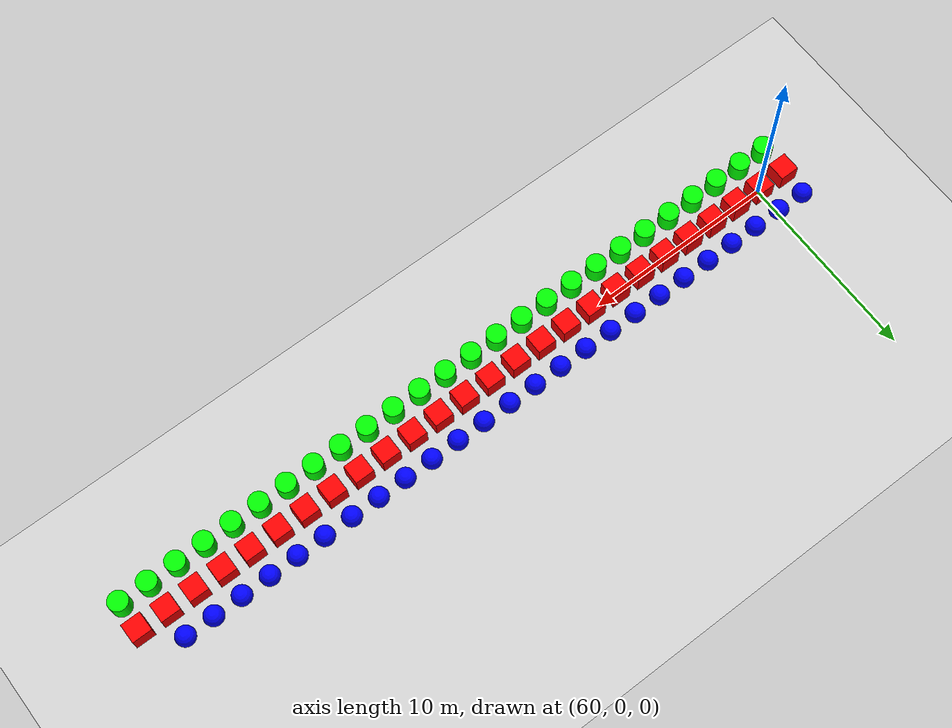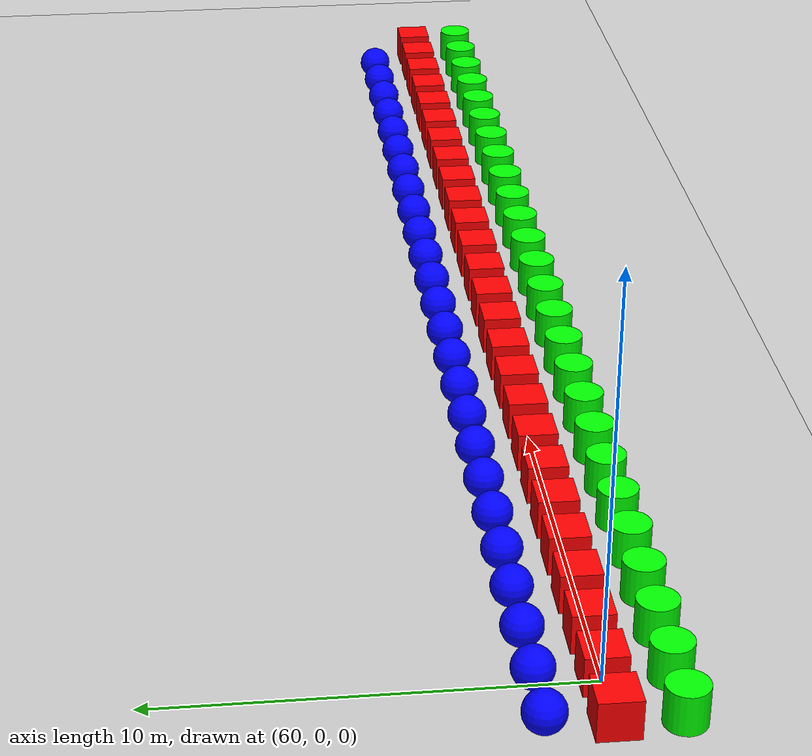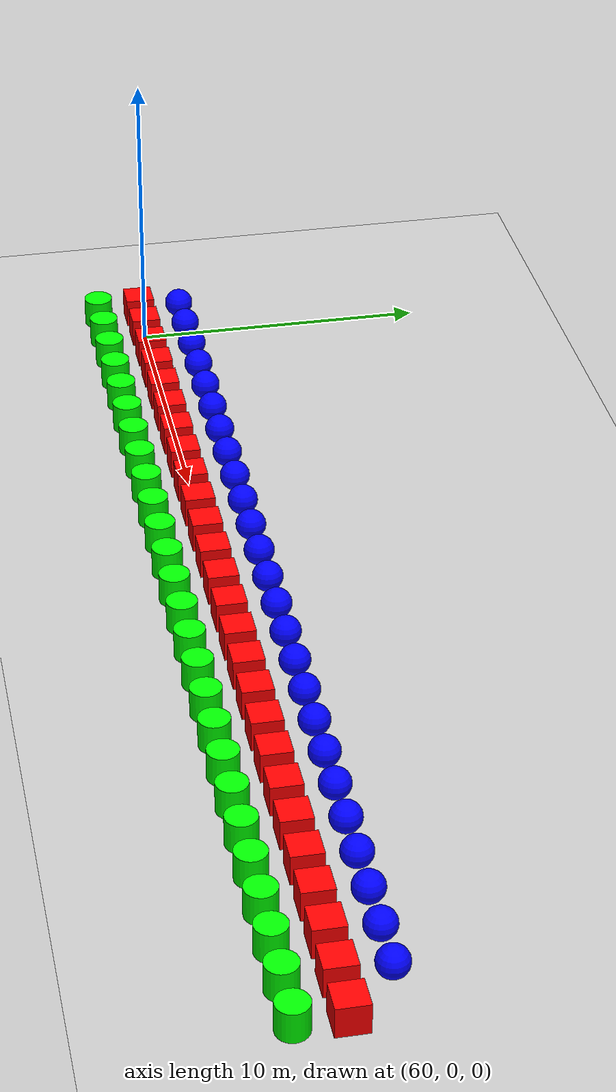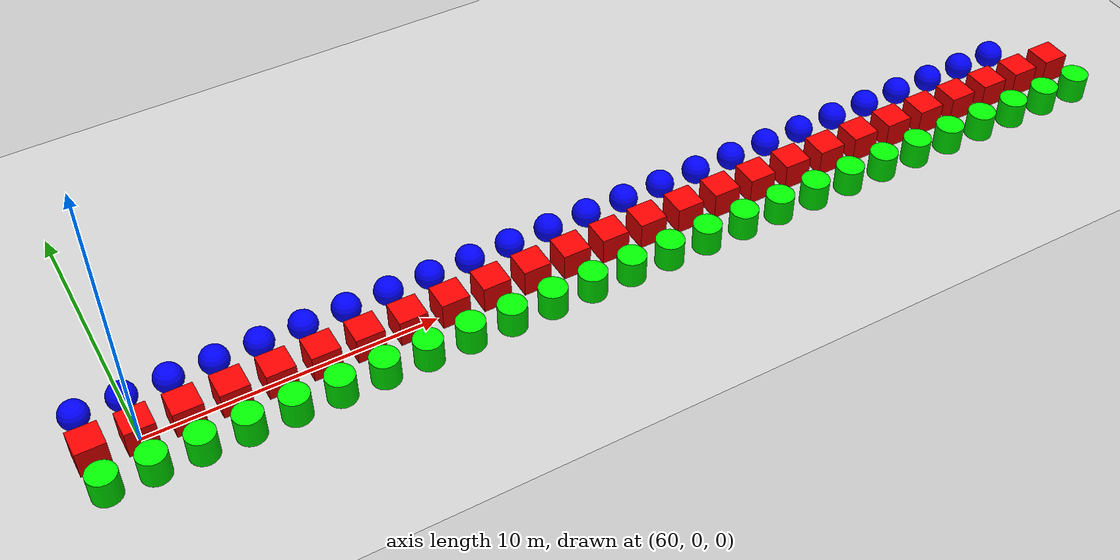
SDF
<sdf version="1.6">
 <world name="shapes">
  <model name="ground_plane">
   <static>true</static>
   <link name="link">
    <collision name="collision">
     <geometry><plane><normal>0 0 1</normal><size>100 100</size></plane></geometry>
    </collision>
    <visual name="visual">
     <geometry><plane><normal>0 0 1</normal><size>100 100</size></plane></geometry>
     <material>
      <ambient>0.8 0.8 0.8 1</ambient>
      <diffuse>0.8 0.8 0.8 1</diffuse>
      <specular>0.8 0.8 0.8 1</specular>
     </material>
    </visual>
   </link>
  </model>
  <model name="box_539">
   <static>false</static>
   <pose>58.5 0 0.5 0 0 0</pose>
   <link name="box_link">
    <inertial>
     <inertia><ixx>1</ixx><ixy>0</ixy><ixz>0</ixz><iyy>1</iyy><iyz>0</iyz><izz>1</izz></inertia>
     <mass>1.0</mass>
    </inertial>
    <collision name="box_collision"><geometry><box><size>1 1 1</size></box></geometry></collision>
    <visual name="box_visual">
     <geometry><box><size>1 1 1</size></box></geometry>
     <material><ambient>1 0 0 1</ambient><diffuse>1 0 0 1</diffuse><specular>1 0 0 1</specular></material>
    </visual>
   </link>
  </model>
  <model name="cylinder_539">
   <static>false</static>
   <pose>58.5 -1.5 0.5 0 0 0</pose>
   <link name="cylinder_link">
    <inertial>
     <inertia><ixx>2</ixx><ixy>0</ixy><ixz>0</ixz><iyy>2</iyy><iyz>0</iyz><izz>2</izz></inertia>
     <mass>2.0</mass>
    </inertial>
    <collision name="cylinder_collision">
     <geometry><cylinder><radius>0.5</radius><length>1.0</length></cylinder></geometry>
    </collision>
    <visual name="cylinder_visual">
     <geometry><cylinder><radius>0.5</radius><length>1.0</length></cylinder></geometry>
     <material><ambient>0 1 0 1</ambient><diffuse>0 1 0 1</diffuse><specular>0 1 0 1</specular></material>
    </visual>
   </link>
  </model>
  <model name="sphere_539">
   <static>false</static>
   <pose>58.5 1.5 0.5 0 0 0</pose>
   <link name="sphere_link">
    <inertial>
     <inertia><ixx>3</ixx><ixy>0</ixy><ixz>0</ixz><iyy>3</iyy><iyz>0</iyz><izz>3</izz></inertia>
     <mass>3.0</mass>
    </inertial>
    <collision name="sphere_collision"><geometry><sphere><radius>0.5</radius></sphere></geometry></collision>
    <visual name="sphere_visual">
     <geometry><sphere><radius>0.5</radius></sphere></geometry>
     <material><ambient>0 0 1 1</ambient><diffuse>0 0 1 1</diffuse><specular>0 0 1 1</specular></material>
    </visual>
   </link>
  </model>
  <model name="box_540">
   <static>false</static>
   <pose>60.0 0 0.5 0 0 0</pose>
   <link name="box_link">
    <inertial>
     <inertia><ixx>1</ixx><ixy>0</ixy><ixz>0</ixz><iyy>1</iyy><iyz>0</iyz><izz>1</izz></inertia>
     <mass>1.0</mass>
    </inertial>
    <collision name="box_collision"><geometry><box><size>1 1 1</size></box></geometry></collision>
    <visual name="box_visual">
     <geometry><box><size>1 1 1</size></box></geometry>
     <material><ambient>1 0 0 1</ambient><diffuse>1 0 0 1</diffuse><specular>1 0 0 1</specular></material>
    </visual>
   </link>
  </model>
  <model name="cylinder_540">
   <static>false</static>
   <pose>60.0 -1.5 0.5 0 0 0</pose>
   <link name="cylinder_link">
    <inertial>
     <inertia><ixx>2</ixx><ixy>0</ixy><ixz>0</ixz><iyy>2</iyy><iyz>0</iyz><izz>2</izz></inertia>
     <mass>2.0</mass>
    </inertial>
    <collision name="cylinder_collision">
     <geometry><cylinder><radius>0.5</radius><length>1.0</length></cylinder></geometry>
    </collision>
    <visual name="cylinder_visual">
     <geometry><cylinder><radius>0.5</radius><length>1.0</length></cylinder></geometry>
     <material><ambient>0 1 0 1</ambient><diffuse>0 1 0 1</diffuse><specular>0 1 0 1</specular></material>
    </visual>
   </link>
  </model>
  <model name="sphere_540">
   <static>false</static>
   <pose>60.0 1.5 0.5 0 0 0</pose>
   <link name="sphere_link">
    <inertial>
     <inertia><ixx>3</ixx><ixy>0</ixy><ixz>0</ixz><iyy>3</iyy><iyz>0</iyz><izz>3</izz></inertia>
     <mass>3.0</mass>
    </inertial>
    <collision name="sphere_collision"><geometry><sphere><radius>0.5</radius></sphere></geometry></collision>
    <visual name="sphere_visual">
     <geometry><sphere><radius>0.5</radius></sphere></geometry>
     <material><ambient>0 0 1 1</ambient><diffuse>0 0 1 1</diffuse><specular>0 0 1 1</specular></material>
    </visual>
   </link>
  </model>
  <model name="box_541">
   <static>false</static>
   <pose>61.5 0 0.5 0 0 0</pose>
   <link name="box_link">
    <inertial>
     <inertia><ixx>1</ixx><ixy>0</ixy><ixz>0</ixz><iyy>1</iyy><iyz>0</iyz><izz>1</izz></inertia>
     <mass>1.0</mass>
    </inertial>
    <collision name="box_collision"><geometry><box><size>1 1 1</size></box></geometry></collision>
    <visual name="box_visual">
     <geometry><box><size>1 1 1</size></box></geometry>
     <material><ambient>1 0 0 1</ambient><diffuse>1 0 0 1</diffuse><specular>1 0 0 1</specular></material>
    </visual>
   </link>
  </model>
  <model name="cylinder_541">
   <static>false</static>
   <pose>61.5 -1.5 0.5 0 0 0</pose>
   <link name="cylinder_link">
    <inertial>
     <inertia><ixx>2</ixx><ixy>0</ixy><ixz>0</ixz><iyy>2</iyy><iyz>0</iyz><izz>2</izz></inertia>
     <mass>2.0</mass>
    </inertial>
    <collision name="cylinder_collision">
     <geometry><cylinder><radius>0.5</radius><length>1.0</length></cylinder></geometry>
    </collision>
    <visual name="cylinder_visual">
     <geometry><cylinder><radius>0.5</radius><length>1.0</length></cylinder></geometry>
     <material><ambient>0 1 0 1</ambient><diffuse>0 1 0 1</diffuse><specular>0 1 0 1</specular></material>
    </visual>
   </link>
  </model>
  <model name="sphere_541">
   <static>false</static>
   <pose>61.5 1.5 0.5 0 0 0</pose>
   <link name="sphere_link">
    <inertial>
     <inertia><ixx>3</ixx><ixy>0</ixy><ixz>0</ixz><iyy>3</iyy><iyz>0</iyz><izz>3</izz></inertia>
     <mass>3.0</mass>
    </inertial>
    <collision name="sphere_collision"><geometry><sphere><radius>0.5</radius></sphere></geometry></collision>
    <visual name="sphere_visual">
     <geometry><sphere><radius>0.5</radius></sphere></geometry>
     <material><ambient>0 0 1 1</ambient><diffuse>0 0 1 1</diffuse><specular>0 0 1 1</specular></material>
    </visual>
   </link>
  </model>
  <model name="box_542">
   <static>false</static>
   <pose>63.0 0 0.5 0 0 0</pose>
   <link name="box_link">
    <inertial>
     <inertia><ixx>1</ixx><ixy>0</ixy><ixz>0</ixz><iyy>1</iyy><iyz>0</iyz><izz>1</izz></inertia>
     <mass>1.0</mass>
    </inertial>
    <collision name="box_collision"><geometry><box><size>1 1 1</size></box></geometry></collision>
    <visual name="box_visual">
     <geometry><box><size>1 1 1</size></box></geometry>
     <material><ambient>1 0 0 1</ambient><diffuse>1 0 0 1</diffuse><specular>1 0 0 1</specular></material>
    </visual>
   </link>
  </model>
  <model name="cylinder_542">
   <static>false</static>
   <pose>63.0 -1.5 0.5 0 0 0</pose>
   <link name="cylinder_link">
    <inertial>
     <inertia><ixx>2</ixx><ixy>0</ixy><ixz>0</ixz><iyy>2</iyy><iyz>0</iyz><izz>2</izz></inertia>
     <mass>2.0</mass>
    </inertial>
    <collision name="cylinder_collision">
     <geometry><cylinder><radius>0.5</radius><length>1.0</length></cylinder></geometry>
    </collision>
    <visual name="cylinder_visual">
     <geometry><cylinder><radius>0.5</radius><length>1.0</length></cylinder></geometry>
     <material><ambient>0 1 0 1</ambient><diffuse>0 1 0 1</diffuse><specular>0 1 0 1</specular></material>
    </visual>
   </link>
  </model>
  <model name="sphere_542">
   <static>false</static>
   <pose>63.0 1.5 0.5 0 0 0</pose>
   <link name="sphere_link">
    <inertial>
     <inertia><ixx>3</ixx><ixy>0</ixy><ixz>0</ixz><iyy>3</iyy><iyz>0</iyz><izz>3</izz></inertia>
     <mass>3.0</mass>
    </inertial>
    <collision name="sphere_collision"><geometry><sphere><radius>0.5</radius></sphere></geometry></collision>
    <visual name="sphere_visual">
     <geometry><sphere><radius>0.5</radius></sphere></geometry>
     <material><ambient>0 0 1 1</ambient><diffuse>0 0 1 1</diffuse><specular>0 0 1 1</specular></material>
    </visual>
   </link>
  </model>
  <model name="box_543">
   <static>false</static>
   <pose>64.5 0 0.5 0 0 0</pose>
   <link name="box_link">
    <inertial>
     <inertia><ixx>1</ixx><ixy>0</ixy><ixz>0</ixz><iyy>1</iyy><iyz>0</iyz><izz>1</izz></inertia>
     <mass>1.0</mass>
    </inertial>
    <collision name="box_collision"><geometry><box><size>1 1 1</size></box></geometry></collision>
    <visual name="box_visual">
     <geometry><box><size>1 1 1</size></box></geometry>
     <material><ambient>1 0 0 1</ambient><diffuse>1 0 0 1</diffuse><specular>1 0 0 1</specular></material>
    </visual>
   </link>
  </model>
  <model name="cylinder_543">
   <static>false</static>
   <pose>64.5 -1.5 0.5 0 0 0</pose>
   <link name="cylinder_link">
    <inertial>
     <inertia><ixx>2</ixx><ixy>0</ixy><ixz>0</ixz><iyy>2</iyy><iyz>0</iyz><izz>2</izz></inertia>
     <mass>2.0</mass>
    </inertial>
    <collision name="cylinder_collision">
     <geometry><cylinder><radius>0.5</radius><length>1.0</length></cylinder></geometry>
    </collision>
    <visual name="cylinder_visual">
     <geometry><cylinder><radius>0.5</radius><length>1.0</length></cylinder></geometry>
     <material><ambient>0 1 0 1</ambient><diffuse>0 1 0 1</diffuse><specular>0 1 0 1</specular></material>
    </visual>
   </link>
  </model>
  <model name="sphere_543">
   <static>false</static>
   <pose>64.5 1.5 0.5 0 0 0</pose>
   <link name="sphere_link">
    <inertial>
     <inertia><ixx>3</ixx><ixy>0</ixy><ixz>0</ixz><iyy>3</iyy><iyz>0</iyz><izz>3</izz></inertia>
     <mass>3.0</mass>
    </inertial>
    <collision name="sphere_collision"><geometry><sphere><radius>0.5</radius></sphere></geometry></collision>
    <visual name="sphere_visual">
     <geometry><sphere><radius>0.5</radius></sphere></geometry>
     <material><ambient>0 0 1 1</ambient><diffuse>0 0 1 1</diffuse><specular>0 0 1 1</specular></material>
    </visual>
   </link>
  </model>
  <model name="box_544">
   <static>false</static>
   <pose>66.0 0 0.5 0 0 0</pose>
   <link name="box_link">
    <inertial>
     <inertia><ixx>1</ixx><ixy>0</ixy><ixz>0</ixz><iyy>1</iyy><iyz>0</iyz><izz>1</izz></inertia>
     <mass>1.0</mass>
    </inertial>
    <collision name="box_collision"><geometry><box><size>1 1 1</size></box></geometry></collision>
    <visual name="box_visual">
     <geometry><box><size>1 1 1</size></box></geometry>
     <material><ambient>1 0 0 1</ambient><diffuse>1 0 0 1</diffuse><specular>1 0 0 1</specular></material>
    </visual>
   </link>
  </model>
  <model name="cylinder_544">
   <static>false</static>
   <pose>66.0 -1.5 0.5 0 0 0</pose>
   <link name="cylinder_link">
    <inertial>
     <inertia><ixx>2</ixx><ixy>0</ixy><ixz>0</ixz><iyy>2</iyy><iyz>0</iyz><izz>2</izz></inertia>
     <mass>2.0</mass>
    </inertial>
    <collision name="cylinder_collision">
     <geometry><cylinder><radius>0.5</radius><length>1.0</length></cylinder></geometry>
    </collision>
    <visual name="cylinder_visual">
     <geometry><cylinder><radius>0.5</radius><length>1.0</length></cylinder></geometry>
     <material><ambient>0 1 0 1</ambient><diffuse>0 1 0 1</diffuse><specular>0 1 0 1</specular></material>
    </visual>
   </link>
  </model>
  <model name="sphere_544">
   <static>false</static>
   <pose>66.0 1.5 0.5 0 0 0</pose>
   <link name="sphere_link">
    <inertial>
     <inertia><ixx>3</ixx><ixy>0</ixy><ixz>0</ixz><iyy>3</iyy><iyz>0</iyz><izz>3</izz></inertia>
     <mass>3.0</mass>
    </inertial>
    <collision name="sphere_collision"><geometry><sphere><radius>0.5</radius></sphere></geometry></collision>
    <visual name="sphere_visual">
     <geometry><sphere><radius>0.5</radius></sphere></geometry>
     <material><ambient>0 0 1 1</ambient><diffuse>0 0 1 1</diffuse><specular>0 0 1 1</specular></material>
    </visual>
   </link>
  </model>
  <model name="box_545">
   <static>false</static>
   <pose>67.5 0 0.5 0 0 0</pose>
   <link name="box_link">
    <inertial>
     <inertia><ixx>1</ixx><ixy>0</ixy><ixz>0</ixz><iyy>1</iyy><iyz>0</iyz><izz>1</izz></inertia>
     <mass>1.0</mass>
    </inertial>
    <collision name="box_collision"><geometry><box><size>1 1 1</size></box></geometry></collision>
    <visual name="box_visual">
     <geometry><box><size>1 1 1</size></box></geometry>
     <material><ambient>1 0 0 1</ambient><diffuse>1 0 0 1</diffuse><specular>1 0 0 1</specular></material>
    </visual>
   </link>
  </model>
  <model name="cylinder_545">
   <static>false</static>
   <pose>67.5 -1.5 0.5 0 0 0</pose>
   <link name="cylinder_link">
    <inertial>
     <inertia><ixx>2</ixx><ixy>0</ixy><ixz>0</ixz><iyy>2</iyy><iyz>0</iyz><izz>2</izz></inertia>
     <mass>2.0</mass>
    </inertial>
    <collision name="cylinder_collision">
     <geometry><cylinder><radius>0.5</radius><length>1.0</length></cylinder></geometry>
    </collision>
    <visual name="cylinder_visual">
     <geometry><cylinder><radius>0.5</radius><length>1.0</length></cylinder></geometry>
     <material><ambient>0 1 0 1</ambient><diffuse>0 1 0 1</diffuse><specular>0 1 0 1</specular></material>
    </visual>
   </link>
  </model>
  <model name="sphere_545">
   <static>false</static>
   <pose>67.5 1.5 0.5 0 0 0</pose>
   <link name="sphere_link">
    <inertial>
     <inertia><ixx>3</ixx><ixy>0</ixy><ixz>0</ixz><iyy>3</iyy><iyz>0</iyz><izz>3</izz></inertia>
     <mass>3.0</mass>
    </inertial>
    <collision name="sphere_collision"><geometry><sphere><radius>0.5</radius></sphere></geometry></collision>
    <visual name="sphere_visual">
     <geometry><sphere><radius>0.5</radius></sphere></geometry>
     <material><ambient>0 0 1 1</ambient><diffuse>0 0 1 1</diffuse><specular>0 0 1 1</specular></material>
    </visual>
   </link>
  </model>
  <model name="box_546">
   <static>false</static>
   <pose>69.0 0 0.5 0 0 0</pose>
   <link name="box_link">
    <inertial>
     <inertia><ixx>1</ixx><ixy>0</ixy><ixz>0</ixz><iyy>1</iyy><iyz>0</iyz><izz>1</izz></inertia>
     <mass>1.0</mass>
    </inertial>
    <collision name="box_collision"><geometry><box><size>1 1 1</size></box></geometry></collision>
    <visual name="box_visual">
     <geometry><box><size>1 1 1</size></box></geometry>
     <material><ambient>1 0 0 1</ambient><diffuse>1 0 0 1</diffuse><specular>1 0 0 1</specular></material>
    </visual>
   </link>
  </model>
  <model name="cylinder_546">
   <static>false</static>
   <pose>69.0 -1.5 0.5 0 0 0</pose>
   <link name="cylinder_link">
    <inertial>
     <inertia><ixx>2</ixx><ixy>0</ixy><ixz>0</ixz><iyy>2</iyy><iyz>0</iyz><izz>2</izz></inertia>
     <mass>2.0</mass>
    </inertial>
    <collision name="cylinder_collision">
     <geometry><cylinder><radius>0.5</radius><length>1.0</length></cylinder></geometry>
    </collision>
    <visual name="cylinder_visual">
     <geometry><cylinder><radius>0.5</radius><length>1.0</length></cylinder></geometry>
     <material><ambient>0 1 0 1</ambient><diffuse>0 1 0 1</diffuse><specular>0 1 0 1</specular></material>
    </visual>
   </link>
  </model>
  <model name="sphere_546">
   <static>false</static>
   <pose>69.0 1.5 0.5 0 0 0</pose>
   <link name="sphere_link">
    <inertial>
     <inertia><ixx>3</ixx><ixy>0</ixy><ixz>0</ixz><iyy>3</iyy><iyz>0</iyz><izz>3</izz></inertia>
     <mass>3.0</mass>
    </inertial>
    <collision name="sphere_collision"><geometry><sphere><radius>0.5</radius></sphere></geometry></collision>
    <visual name="sphere_visual">
     <geometry><sphere><radius>0.5</radius></sphere></geometry>
     <material><ambient>0 0 1 1</ambient><diffuse>0 0 1 1</diffuse><specular>0 0 1 1</specular></material>
    </visual>
   </link>
  </model>
  <model name="box_547">
   <static>false</static>
   <pose>70.5 0 0.5 0 0 0</pose>
   <link name="box_link">
    <inertial>
     <inertia><ixx>1</ixx><ixy>0</ixy><ixz>0</ixz><iyy>1</iyy><iyz>0</iyz><izz>1</izz></inertia>
     <mass>1.0</mass>
    </inertial>
    <collision name="box_collision"><geometry><box><size>1 1 1</size></box></geometry></collision>
    <visual name="box_visual">
     <geometry><box><size>1 1 1</size></box></geometry>
     <material><ambient>1 0 0 1</ambient><diffuse>1 0 0 1</diffuse><specular>1 0 0 1</specular></material>
    </visual>
   </link>
  </model>
  <model name="cylinder_547">
   <static>false</static>
   <pose>70.5 -1.5 0.5 0 0 0</pose>
   <link name="cylinder_link">
    <inertial>
     <inertia><ixx>2</ixx><ixy>0</ixy><ixz>0</ixz><iyy>2</iyy><iyz>0</iyz><izz>2</izz></inertia>
     <mass>2.0</mass>
    </inertial>
    <collision name="cylinder_collision">
     <geometry><cylinder><radius>0.5</radius><length>1.0</length></cylinder></geometry>
    </collision>
    <visual name="cylinder_visual">
     <geometry><cylinder><radius>0.5</radius><length>1.0</length></cylinder></geometry>
     <material><ambient>0 1 0 1</ambient><diffuse>0 1 0 1</diffuse><specular>0 1 0 1</specular></material>
    </visual>
   </link>
  </model>
  <model name="sphere_547">
   <static>false</static>
   <pose>70.5 1.5 0.5 0 0 0</pose>
   <link name="sphere_link">
    <inertial>
     <inertia><ixx>3</ixx><ixy>0</ixy><ixz>0</ixz><iyy>3</iyy><iyz>0</iyz><izz>3</izz></inertia>
     <mass>3.0</mass>
    </inertial>
    <collision name="sphere_collision"><geometry><sphere><radius>0.5</radius></sphere></geometry></collision>
    <visual name="sphere_visual">
     <geometry><sphere><radius>0.5</radius></sphere></geometry>
     <material><ambient>0 0 1 1</ambient><diffuse>0 0 1 1</diffuse><specular>0 0 1 1</specular></material>
    </visual>
   </link>
  </model>
  <model name="box_548">
   <static>false</static>
   <pose>72.0 0 0.5 0 0 0</pose>
   <link name="box_link">
    <inertial>
     <inertia><ixx>1</ixx><ixy>0</ixy><ixz>0</ixz><iyy>1</iyy><iyz>0</iyz><izz>1</izz></inertia>
     <mass>1.0</mass>
    </inertial>
    <collision name="box_collision"><geometry><box><size>1 1 1</size></box></geometry></collision>
    <visual name="box_visual">
     <geometry><box><size>1 1 1</size></box></geometry>
     <material><ambient>1 0 0 1</ambient><diffuse>1 0 0 1</diffuse><specular>1 0 0 1</specular></material>
    </visual>
   </link>
  </model>
  <model name="cylinder_548">
   <static>false</static>
   <pose>72.0 -1.5 0.5 0 0 0</pose>
   <link name="cylinder_link">
    <inertial>
     <inertia><ixx>2</ixx><ixy>0</ixy><ixz>0</ixz><iyy>2</iyy><iyz>0</iyz><izz>2</izz></inertia>
     <mass>2.0</mass>
    </inertial>
    <collision name="cylinder_collision">
     <geometry><cylinder><radius>0.5</radius><length>1.0</length></cylinder></geometry>
    </collision>
    <visual name="cylinder_visual">
     <geometry><cylinder><radius>0.5</radius><length>1.0</length></cylinder></geometry>
     <material><ambient>0 1 0 1</ambient><diffuse>0 1 0 1</diffuse><specular>0 1 0 1</specular></material>
    </visual>
   </link>
  </model>
  <model name="sphere_548">
   <static>false</static>
   <pose>72.0 1.5 0.5 0 0 0</pose>
   <link name="sphere_link">
    <inertial>
     <inertia><ixx>3</ixx><ixy>0</ixy><ixz>0</ixz><iyy>3</iyy><iyz>0</iyz><izz>3</izz></inertia>
     <mass>3.0</mass>
    </inertial>
    <collision name="sphere_collision"><geometry><sphere><radius>0.5</radius></sphere></geometry></collision>
    <visual name="sphere_visual">
     <geometry><sphere><radius>0.5</radius></sphere></geometry>
     <material><ambient>0 0 1 1</ambient><diffuse>0 0 1 1</diffuse><specular>0 0 1 1</specular></material>
    </visual>
   </link>
  </model>
  <model name="box_549">
   <static>false</static>
   <pose>73.5 0 0.5 0 0 0</pose>
   <link name="box_link">
    <inertial>
     <inertia><ixx>1</ixx><ixy>0</ixy><ixz>0</ixz><iyy>1</iyy><iyz>0</iyz><izz>1</izz></inertia>
     <mass>1.0</mass>
    </inertial>
    <collision name="box_collision"><geometry><box><size>1 1 1</size></box></geometry></collision>
    <visual name="box_visual">
     <geometry><box><size>1 1 1</size></box></geometry>
     <material><ambient>1 0 0 1</ambient><diffuse>1 0 0 1</diffuse><specular>1 0 0 1</specular></material>
    </visual>
   </link>
  </model>
  <model name="cylinder_549">
   <static>false</static>
   <pose>73.5 -1.5 0.5 0 0 0</pose>
   <link name="cylinder_link">
    <inertial>
     <inertia><ixx>2</ixx><ixy>0</ixy><ixz>0</ixz><iyy>2</iyy><iyz>0</iyz><izz>2</izz></inertia>
     <mass>2.0</mass>
    </inertial>
    <collision name="cylinder_collision">
     <geometry><cylinder><radius>0.5</radius><length>1.0</length></cylinder></geometry>
    </collision>
    <visual name="cylinder_visual">
     <geometry><cylinder><radius>0.5</radius><length>1.0</length></cylinder></geometry>
     <material><ambient>0 1 0 1</ambient><diffuse>0 1 0 1</diffuse><specular>0 1 0 1</specular></material>
    </visual>
   </link>
  </model>
  <model name="sphere_549">
   <static>false</static>
   <pose>73.5 1.5 0.5 0 0 0</pose>
   <link name="sphere_link">
    <inertial>
     <inertia><ixx>3</ixx><ixy>0</ixy><ixz>0</ixz><iyy>3</iyy><iyz>0</iyz><izz>3</izz></inertia>
     <mass>3.0</mass>
    </inertial>
    <collision name="sphere_collision"><geometry><sphere><radius>0.5</radius></sphere></geometry></collision>
    <visual name="sphere_visual">
     <geometry><sphere><radius>0.5</radius></sphere></geometry>
     <material><ambient>0 0 1 1</ambient><diffuse>0 0 1 1</diffuse><specular>0 0 1 1</specular></material>
    </visual>
   </link>
  </model>
  <model name="box_550">
   <static>false</static>
   <pose>75.0 0 0.5 0 0 0</pose>
   <link name="box_link">
    <inertial>
     <inertia><ixx>1</ixx><ixy>0</ixy><ixz>0</ixz><iyy>1</iyy><iyz>0</iyz><izz>1</izz></inertia>
     <mass>1.0</mass>
    </inertial>
    <collision name="box_collision"><geometry><box><size>1 1 1</size></box></geometry></collision>
    <visual name="box_visual">
     <geometry><box><size>1 1 1</size></box></geometry>
     <material><ambient>1 0 0 1</ambient><diffuse>1 0 0 1</diffuse><specular>1 0 0 1</specular></material>
    </visual>
   </link>
  </model>
  <model name="cylinder_550">
   <static>false</static>
   <pose>75.0 -1.5 0.5 0 0 0</pose>
   <link name="cylinder_link">
    <inertial>
     <inertia><ixx>2</ixx><ixy>0</ixy><ixz>0</ixz><iyy>2</iyy><iyz>0</iyz><izz>2</izz></inertia>
     <mass>2.0</mass>
    </inertial>
    <collision name="cylinder_collision">
     <geometry><cylinder><radius>0.5</radius><length>1.0</length></cylinder></geometry>
    </collision>
    <visual name="cylinder_visual">
     <geometry><cylinder><radius>0.5</radius><length>1.0</length></cylinder></geometry>
     <material><ambient>0 1 0 1</ambient><diffuse>0 1 0 1</diffuse><specular>0 1 0 1</specular></material>
    </visual>
   </link>
  </model>
  <model name="sphere_550">
   <static>false</static>
   <pose>75.0 1.5 0.5 0 0 0</pose>
   <link name="sphere_link">
    <inertial>
     <inertia><ixx>3</ixx><ixy>0</ixy><ixz>0</ixz><iyy>3</iyy><iyz>0</iyz><izz>3</izz></inertia>
     <mass>3.0</mass>
    </inertial>
    <collision name="sphere_collision"><geometry><sphere><radius>0.5</radius></sphere></geometry></collision>
    <visual name="sphere_visual">
     <geometry><sphere><radius>0.5</radius></sphere></geometry>
     <material><ambient>0 0 1 1</ambient><diffuse>0 0 1 1</diffuse><specular>0 0 1 1</specular></material>
    </visual>
   </link>
  </model>
  <model name="box_551">
   <static>false</static>
   <pose>76.5 0 0.5 0 0 0</pose>
   <link name="box_link">
    <inertial>
     <inertia><ixx>1</ixx><ixy>0</ixy><ixz>0</ixz><iyy>1</iyy><iyz>0</iyz><izz>1</izz></inertia>
     <mass>1.0</mass>
    </inertial>
    <collision name="box_collision"><geometry><box><size>1 1 1</size></box></geometry></collision>
    <visual name="box_visual">
     <geometry><box><size>1 1 1</size></box></geometry>
     <material><ambient>1 0 0 1</ambient><diffuse>1 0 0 1</diffuse><specular>1 0 0 1</specular></material>
    </visual>
   </link>
  </model>
  <model name="cylinder_551">
   <static>false</static>
   <pose>76.5 -1.5 0.5 0 0 0</pose>
   <link name="cylinder_link">
    <inertial>
     <inertia><ixx>2</ixx><ixy>0</ixy><ixz>0</ixz><iyy>2</iyy><iyz>0</iyz><izz>2</izz></inertia>
     <mass>2.0</mass>
    </inertial>
    <collision name="cylinder_collision">
     <geometry><cylinder><radius>0.5</radius><length>1.0</length></cylinder></geometry>
    </collision>
    <visual name="cylinder_visual">
     <geometry><cylinder><radius>0.5</radius><length>1.0</length></cylinder></geometry>
     <material><ambient>0 1 0 1</ambient><diffuse>0 1 0 1</diffuse><specular>0 1 0 1</specular></material>
    </visual>
   </link>
  </model>
  <model name="sphere_551">
   <static>false</static>
   <pose>76.5 1.5 0.5 0 0 0</pose>
   <link name="sphere_link">
    <inertial>
     <inertia><ixx>3</ixx><ixy>0</ixy><ixz>0</ixz><iyy>3</iyy><iyz>0</iyz><izz>3</izz></inertia>
     <mass>3.0</mass>
    </inertial>
    <collision name="sphere_collision"><geometry><sphere><radius>0.5</radius></sphere></geometry></collision>
    <visual name="sphere_visual">
     <geometry><sphere><radius>0.5</radius></sphere></geometry>
     <material><ambient>0 0 1 1</ambient><diffuse>0 0 1 1</diffuse><specular>0 0 1 1</specular></material>
    </visual>
   </link>
  </model>
  <model name="box_552">
   <static>false</static>
   <pose>78.0 0 0.5 0 0 0</pose>
   <link name="box_link">
    <inertial>
     <inertia><ixx>1</ixx><ixy>0</ixy><ixz>0</ixz><iyy>1</iyy><iyz>0</iyz><izz>1</izz></inertia>
     <mass>1.0</mass>
    </inertial>
    <collision name="box_collision"><geometry><box><size>1 1 1</size></box></geometry></collision>
    <visual name="box_visual">
     <geometry><box><size>1 1 1</size></box></geometry>
     <material><ambient>1 0 0 1</ambient><diffuse>1 0 0 1</diffuse><specular>1 0 0 1</specular></material>
    </visual>
   </link>
  </model>
  <model name="cylinder_552">
   <static>false</static>
   <pose>78.0 -1.5 0.5 0 0 0</pose>
   <link name="cylinder_link">
    <inertial>
     <inertia><ixx>2</ixx><ixy>0</ixy><ixz>0</ixz><iyy>2</iyy><iyz>0</iyz><izz>2</izz></inertia>
     <mass>2.0</mass>
    </inertial>
    <collision name="cylinder_collision">
     <geometry><cylinder><radius>0.5</radius><length>1.0</length></cylinder></geometry>
    </collision>
    <visual name="cylinder_visual">
     <geometry><cylinder><radius>0.5</radius><length>1.0</length></cylinder></geometry>
     <material><ambient>0 1 0 1</ambient><diffuse>0 1 0 1</diffuse><specular>0 1 0 1</specular></material>
    </visual>
   </link>
  </model>
  <model name="sphere_552">
   <static>false</static>
   <pose>78.0 1.5 0.5 0 0 0</pose>
   <link name="sphere_link">
    <inertial>
     <inertia><ixx>3</ixx><ixy>0</ixy><ixz>0</ixz><iyy>3</iyy><iyz>0</iyz><izz>3</izz></inertia>
     <mass>3.0</mass>
    </inertial>
    <collision name="sphere_collision"><geometry><sphere><radius>0.5</radius></sphere></geometry></collision>
    <visual name="sphere_visual">
     <geometry><sphere><radius>0.5</radius></sphere></geometry>
     <material><ambient>0 0 1 1</ambient><diffuse>0 0 1 1</diffuse><specular>0 0 1 1</specular></material>
    </visual>
   </link>
  </model>
  <model name="box_553">
   <static>false</static>
   <pose>79.5 0 0.5 0 0 0</pose>
   <link name="box_link">
    <inertial>
     <inertia><ixx>1</ixx><ixy>0</ixy><ixz>0</ixz><iyy>1</iyy><iyz>0</iyz><izz>1</izz></inertia>
     <mass>1.0</mass>
    </inertial>
    <collision name="box_collision"><geometry><box><size>1 1 1</size></box></geometry></collision>
    <visual name="box_visual">
     <geometry><box><size>1 1 1</size></box></geometry>
     <material><ambient>1 0 0 1</ambient><diffuse>1 0 0 1</diffuse><specular>1 0 0 1</specular></material>
    </visual>
   </link>
  </model>
  <model name="cylinder_553">
   <static>false</static>
   <pose>79.5 -1.5 0.5 0 0 0</pose>
   <link name="cylinder_link">
    <inertial>
     <inertia><ixx>2</ixx><ixy>0</ixy><ixz>0</ixz><iyy>2</iyy><iyz>0</iyz><izz>2</izz></inertia>
     <mass>2.0</mass>
    </inertial>
    <collision name="cylinder_collision">
     <geometry><cylinder><radius>0.5</radius><length>1.0</length></cylinder></geometry>
    </collision>
    <visual name="cylinder_visual">
     <geometry><cylinder><radius>0.5</radius><length>1.0</length></cylinder></geometry>
     <material><ambient>0 1 0 1</ambient><diffuse>0 1 0 1</diffuse><specular>0 1 0 1</specular></material>
    </visual>
   </link>
  </model>
  <model name="sphere_553">
   <static>false</static>
   <pose>79.5 1.5 0.5 0 0 0</pose>
   <link name="sphere_link">
    <inertial>
     <inertia><ixx>3</ixx><ixy>0</ixy><ixz>0</ixz><iyy>3</iyy><iyz>0</iyz><izz>3</izz></inertia>
     <mass>3.0</mass>
    </inertial>
    <collision name="sphere_collision"><geometry><sphere><radius>0.5</radius></sphere></geometry></collision>
    <visual name="sphere_visual">
     <geometry><sphere><radius>0.5</radius></sphere></geometry>
     <material><ambient>0 0 1 1</ambient><diffuse>0 0 1 1</diffuse><specular>0 0 1 1</specular></material>
    </visual>
   </link>
  </model>
  <model name="box_554">
   <static>false</static>
   <pose>81.0 0 0.5 0 0 0</pose>
   <link name="box_link">
    <inertial>
     <inertia><ixx>1</ixx><ixy>0</ixy><ixz>0</ixz><iyy>1</iyy><iyz>0</iyz><izz>1</izz></inertia>
     <mass>1.0</mass>
    </inertial>
    <collision name="box_collision"><geometry><box><size>1 1 1</size></box></geometry></collision>
    <visual name="box_visual">
     <geometry><box><size>1 1 1</size></box></geometry>
     <material><ambient>1 0 0 1</ambient><diffuse>1 0 0 1</diffuse><specular>1 0 0 1</specular></material>
    </visual>
   </link>
  </model>
  <model name="cylinder_554">
   <static>false</static>
   <pose>81.0 -1.5 0.5 0 0 0</pose>
   <link name="cylinder_link">
    <inertial>
     <inertia><ixx>2</ixx><ixy>0</ixy><ixz>0</ixz><iyy>2</iyy><iyz>0</iyz><izz>2</izz></inertia>
     <mass>2.0</mass>
    </inertial>
    <collision name="cylinder_collision">
     <geometry><cylinder><radius>0.5</radius><length>1.0</length></cylinder></geometry>
    </collision>
    <visual name="cylinder_visual">
     <geometry><cylinder><radius>0.5</radius><length>1.0</length></cylinder></geometry>
     <material><ambient>0 1 0 1</ambient><diffuse>0 1 0 1</diffuse><specular>0 1 0 1</specular></material>
    </visual>
   </link>
  </model>
  <model name="sphere_554">
   <static>false</static>
   <pose>81.0 1.5 0.5 0 0 0</pose>
   <link name="sphere_link">
    <inertial>
     <inertia><ixx>3</ixx><ixy>0</ixy><ixz>0</ixz><iyy>3</iyy><iyz>0</iyz><izz>3</izz></inertia>
     <mass>3.0</mass>
    </inertial>
    <collision name="sphere_collision"><geometry><sphere><radius>0.5</radius></sphere></geometry></collision>
    <visual name="sphere_visual">
     <geometry><sphere><radius>0.5</radius></sphere></geometry>
     <material><ambient>0 0 1 1</ambient><diffuse>0 0 1 1</diffuse><specular>0 0 1 1</specular></material>
    </visual>
   </link>
  </model>
  <model name="box_555">
   <static>false</static>
   <pose>82.5 0 0.5 0 0 0</pose>
   <link name="box_link">
    <inertial>
     <inertia><ixx>1</ixx><ixy>0</ixy><ixz>0</ixz><iyy>1</iyy><iyz>0</iyz><izz>1</izz></inertia>
     <mass>1.0</mass>
    </inertial>
    <collision name="box_collision"><geometry><box><size>1 1 1</size></box></geometry></collision>
    <visual name="box_visual">
     <geometry><box><size>1 1 1</size></box></geometry>
     <material><ambient>1 0 0 1</ambient><diffuse>1 0 0 1</diffuse><specular>1 0 0 1</specular></material>
    </visual>
   </link>
  </model>
  <model name="cylinder_555">
   <static>false</static>
   <pose>82.5 -1.5 0.5 0 0 0</pose>
   <link name="cylinder_link">
    <inertial>
     <inertia><ixx>2</ixx><ixy>0</ixy><ixz>0</ixz><iyy>2</iyy><iyz>0</iyz><izz>2</izz></inertia>
     <mass>2.0</mass>
    </inertial>
    <collision name="cylinder_collision">
     <geometry><cylinder><radius>0.5</radius><length>1.0</length></cylinder></geometry>
    </collision>
    <visual name="cylinder_visual">
     <geometry><cylinder><radius>0.5</radius><length>1.0</length></cylinder></geometry>
     <material><ambient>0 1 0 1</ambient><diffuse>0 1 0 1</diffuse><specular>0 1 0 1</specular></material>
    </visual>
   </link>
  </model>
  <model name="sphere_555">
   <static>false</static>
   <pose>82.5 1.5 0.5 0 0 0</pose>
   <link name="sphere_link">
    <inertial>
     <inertia><ixx>3</ixx><ixy>0</ixy><ixz>0</ixz><iyy>3</iyy><iyz>0</iyz><izz>3</izz></inertia>
     <mass>3.0</mass>
    </inertial>
    <collision name="sphere_collision"><geometry><sphere><radius>0.5</radius></sphere></geometry></collision>
    <visual name="sphere_visual">
     <geometry><sphere><radius>0.5</radius></sphere></geometry>
     <material><ambient>0 0 1 1</ambient><diffuse>0 0 1 1</diffuse><specular>0 0 1 1</specular></material>
    </visual>
   </link>
  </model>
  <model name="box_556">
   <static>false</static>
   <pose>84.0 0 0.5 0 0 0</pose>
   <link name="box_link">
    <inertial>
     <inertia><ixx>1</ixx><ixy>0</ixy><ixz>0</ixz><iyy>1</iyy><iyz>0</iyz><izz>1</izz></inertia>
     <mass>1.0</mass>
    </inertial>
    <collision name="box_collision"><geometry><box><size>1 1 1</size></box></geometry></collision>
    <visual name="box_visual">
     <geometry><box><size>1 1 1</size></box></geometry>
     <material><ambient>1 0 0 1</ambient><diffuse>1 0 0 1</diffuse><specular>1 0 0 1</specular></material>
    </visual>
   </link>
  </model>
  <model name="cylinder_556">
   <static>false</static>
   <pose>84.0 -1.5 0.5 0 0 0</pose>
   <link name="cylinder_link">
    <inertial>
     <inertia><ixx>2</ixx><ixy>0</ixy><ixz>0</ixz><iyy>2</iyy><iyz>0</iyz><izz>2</izz></inertia>
     <mass>2.0</mass>
    </inertial>
    <collision name="cylinder_collision">
     <geometry><cylinder><radius>0.5</radius><length>1.0</length></cylinder></geometry>
    </collision>
    <visual name="cylinder_visual">
     <geometry><cylinder><radius>0.5</radius><length>1.0</length></cylinder></geometry>
     <material><ambient>0 1 0 1</ambient><diffuse>0 1 0 1</diffuse><specular>0 1 0 1</specular></material>
    </visual>
   </link>
  </model>
  <model name="sphere_556">
   <static>false</static>
   <pose>84.0 1.5 0.5 0 0 0</pose>
   <link name="sphere_link">
    <inertial>
     <inertia><ixx>3</ixx><ixy>0</ixy><ixz>0</ixz><iyy>3</iyy><iyz>0</iyz><izz>3</izz></inertia>
     <mass>3.0</mass>
    </inertial>
    <collision name="sphere_collision"><geometry><sphere><radius>0.5</radius></sphere></geometry></collision>
    <visual name="sphere_visual">
     <geometry><sphere><radius>0.5</radius></sphere></geometry>
     <material><ambient>0 0 1 1</ambient><diffuse>0 0 1 1</diffuse><specular>0 0 1 1</specular></material>
    </visual>
   </link>
  </model>
  <model name="box_557">
   <static>false</static>
   <pose>85.5 0 0.5 0 0 0</pose>
   <link name="box_link">
    <inertial>
     <inertia><ixx>1</ixx><ixy>0</ixy><ixz>0</ixz><iyy>1</iyy><iyz>0</iyz><izz>1</izz></inertia>
     <mass>1.0</mass>
    </inertial>
    <collision name="box_collision"><geometry><box><size>1 1 1</size></box></geometry></collision>
    <visual name="box_visual">
     <geometry><box><size>1 1 1</size></box></geometry>
     <material><ambient>1 0 0 1</ambient><diffuse>1 0 0 1</diffuse><specular>1 0 0 1</specular></material>
    </visual>
   </link>
  </model>
  <model name="cylinder_557">
   <static>false</static>
   <pose>85.5 -1.5 0.5 0 0 0</pose>
   <link name="cylinder_link">
    <inertial>
     <inertia><ixx>2</ixx><ixy>0</ixy><ixz>0</ixz><iyy>2</iyy><iyz>0</iyz><izz>2</izz></inertia>
     <mass>2.0</mass>
    </inertial>
    <collision name="cylinder_collision">
     <geometry><cylinder><radius>0.5</radius><length>1.0</length></cylinder></geometry>
    </collision>
    <visual name="cylinder_visual">
     <geometry><cylinder><radius>0.5</radius><length>1.0</length></cylinder></geometry>
     <material><ambient>0 1 0 1</ambient><diffuse>0 1 0 1</diffuse><specular>0 1 0 1</specular></material>
    </visual>
   </link>
  </model>
  <model name="sphere_557">
   <static>false</static>
   <pose>85.5 1.5 0.5 0 0 0</pose>
   <link name="sphere_link">
    <inertial>
     <inertia><ixx>3</ixx><ixy>0</ixy><ixz>0</ixz><iyy>3</iyy><iyz>0</iyz><izz>3</izz></inertia>
     <mass>3.0</mass>
    </inertial>
    <collision name="sphere_collision"><geometry><sphere><radius>0.5</radius></sphere></geometry></collision>
    <visual name="sphere_visual">
     <geometry><sphere><radius>0.5</radius></sphere></geometry>
     <material><ambient>0 0 1 1</ambient><diffuse>0 0 1 1</diffuse><specular>0 0 1 1</specular></material>
    </visual>
   </link>
  </model>
  <model name="box_558">
   <static>false</static>
   <pose>87.0 0 0.5 0 0 0</pose>
   <link name="box_link">
    <inertial>
     <inertia><ixx>1</ixx><ixy>0</ixy><ixz>0</ixz><iyy>1</iyy><iyz>0</iyz><izz>1</izz></inertia>
     <mass>1.0</mass>
    </inertial>
    <collision name="box_collision"><geometry><box><size>1 1 1</size></box></geometry></collision>
    <visual name="box_visual">
     <geometry><box><size>1 1 1</size></box></geometry>
     <material><ambient>1 0 0 1</ambient><diffuse>1 0 0 1</diffuse><specular>1 0 0 1</specular></material>
    </visual>
   </link>
  </model>
  <model name="cylinder_558">
   <static>false</static>
   <pose>87.0 -1.5 0.5 0 0 0</pose>
   <link name="cylinder_link">
    <inertial>
     <inertia><ixx>2</ixx><ixy>0</ixy><ixz>0</ixz><iyy>2</iyy><iyz>0</iyz><izz>2</izz></inertia>
     <mass>2.0</mass>
    </inertial>
    <collision name="cylinder_collision">
     <geometry><cylinder><radius>0.5</radius><length>1.0</length></cylinder></geometry>
    </collision>
    <visual name="cylinder_visual">
     <geometry><cylinder><radius>0.5</radius><length>1.0</length></cylinder></geometry>
     <material><ambient>0 1 0 1</ambient><diffuse>0 1 0 1</diffuse><specular>0 1 0 1</specular></material>
    </visual>
   </link>
  </model>
  <model name="sphere_558">
   <static>false</static>
   <pose>87.0 1.5 0.5 0 0 0</pose>
   <link name="sphere_link">
    <inertial>
     <inertia><ixx>3</ixx><ixy>0</ixy><ixz>0</ixz><iyy>3</iyy><iyz>0</iyz><izz>3</izz></inertia>
     <mass>3.0</mass>
    </inertial>
    <collision name="sphere_collision"><geometry><sphere><radius>0.5</radius></sphere></geometry></collision>
    <visual name="sphere_visual">
     <geometry><sphere><radius>0.5</radius></sphere></geometry>
     <material><ambient>0 0 1 1</ambient><diffuse>0 0 1 1</diffuse><specular>0 0 1 1</specular></material>
    </visual>
   </link>
  </model>
  <model name="box_559">
   <static>false</static>
   <pose>88.5 0 0.5 0 0 0</pose>
   <link name="box_link">
    <inertial>
     <inertia><ixx>1</ixx><ixy>0</ixy><ixz>0</ixz><iyy>1</iyy><iyz>0</iyz><izz>1</izz></inertia>
     <mass>1.0</mass>
    </inertial>
    <collision name="box_collision"><geometry><box><size>1 1 1</size></box></geometry></collision>
    <visual name="box_visual">
     <geometry><box><size>1 1 1</size></box></geometry>
     <material><ambient>1 0 0 1</ambient><diffuse>1 0 0 1</diffuse><specular>1 0 0 1</specular></material>
    </visual>
   </link>
  </model>
  <model name="cylinder_559">
   <static>false</static>
   <pose>88.5 -1.5 0.5 0 0 0</pose>
   <link name="cylinder_link">
    <inertial>
     <inertia><ixx>2</ixx><ixy>0</ixy><ixz>0</ixz><iyy>2</iyy><iyz>0</iyz><izz>2</izz></inertia>
     <mass>2.0</mass>
    </inertial>
    <collision name="cylinder_collision">
     <geometry><cylinder><radius>0.5</radius><length>1.0</length></cylinder></geometry>
    </collision>
    <visual name="cylinder_visual">
     <geometry><cylinder><radius>0.5</radius><length>1.0</length></cylinder></geometry>
     <material><ambient>0 1 0 1</ambient><diffuse>0 1 0 1</diffuse><specular>0 1 0 1</specular></material>
    </visual>
   </link>
  </model>
  <model name="sphere_559">
   <static>false</static>
   <pose>88.5 1.5 0.5 0 0 0</pose>
   <link name="sphere_link">
    <inertial>
     <inertia><ixx>3</ixx><ixy>0</ixy><ixz>0</ixz><iyy>3</iyy><iyz>0</iyz><izz>3</izz></inertia>
     <mass>3.0</mass>
    </inertial>
    <collision name="sphere_collision"><geometry><sphere><radius>0.5</radius></sphere></geometry></collision>
    <visual name="sphere_visual">
     <geometry><sphere><radius>0.5</radius></sphere></geometry>
     <material><ambient>0 0 1 1</ambient><diffuse>0 0 1 1</diffuse><specular>0 0 1 1</specular></material>
    </visual>
   </link>
  </model>
  <model name="box_560">
   <static>false</static>
   <pose>90.0 0 0.5 0 0 0</pose>
   <link name="box_link">
    <inertial>
     <inertia><ixx>1</ixx><ixy>0</ixy><ixz>0</ixz><iyy>1</iyy><iyz>0</iyz><izz>1</izz></inertia>
     <mass>1.0</mass>
    </inertial>
    <collision name="box_collision"><geometry><box><size>1 1 1</size></box></geometry></collision>
    <visual name="box_visual">
     <geometry><box><size>1 1 1</size></box></geometry>
     <material><ambient>1 0 0 1</ambient><diffuse>1 0 0 1</diffuse><specular>1 0 0 1</specular></material>
    </visual>
   </link>
  </model>
  <model name="cylinder_560">
   <static>false</static>
   <pose>90.0 -1.5 0.5 0 0 0</pose>
   <link name="cylinder_link">
    <inertial>
     <inertia><ixx>2</ixx><ixy>0</ixy><ixz>0</ixz><iyy>2</iyy><iyz>0</iyz><izz>2</izz></inertia>
     <mass>2.0</mass>
    </inertial>
    <collision name="cylinder_collision">
     <geometry><cylinder><radius>0.5</radius><length>1.0</length></cylinder></geometry>
    </collision>
    <visual name="cylinder_visual">
     <geometry><cylinder><radius>0.5</radius><length>1.0</length></cylinder></geometry>
     <material><ambient>0 1 0 1</ambient><diffuse>0 1 0 1</diffuse><specular>0 1 0 1</specular></material>
    </visual>
   </link>
  </model>
  <model name="sphere_560">
   <static>false</static>
   <pose>90.0 1.5 0.5 0 0 0</pose>
   <link name="sphere_link">
    <inertial>
     <inertia><ixx>3</ixx><ixy>0</ixy><ixz>0</ixz><iyy>3</iyy><iyz>0</iyz><izz>3</izz></inertia>
     <mass>3.0</mass>
    </inertial>
    <collision name="sphere_collision"><geometry><sphere><radius>0.5</radius></sphere></geometry></collision>
    <visual name="sphere_visual">
     <geometry><sphere><radius>0.5</radius></sphere></geometry>
     <material><ambient>0 0 1 1</ambient><diffuse>0 0 1 1</diffuse><specular>0 0 1 1</specular></material>
    </visual>
   </link>
  </model>
  <model name="box_561">
   <static>false</static>
   <pose>91.5 0 0.5 0 0 0</pose>
   <link name="box_link">
    <inertial>
     <inertia><ixx>1</ixx><ixy>0</ixy><ixz>0</ixz><iyy>1</iyy><iyz>0</iyz><izz>1</izz></inertia>
     <mass>1.0</mass>
    </inertial>
    <collision name="box_collision"><geometry><box><size>1 1 1</size></box></geometry></collision>
    <visual name="box_visual">
     <geometry><box><size>1 1 1</size></box></geometry>
     <material><ambient>1 0 0 1</ambient><diffuse>1 0 0 1</diffuse><specular>1 0 0 1</specular></material>
    </visual>
   </link>
  </model>
  <model name="cylinder_561">
   <static>false</static>
   <pose>91.5 -1.5 0.5 0 0 0</pose>
   <link name="cylinder_link">
    <inertial>
     <inertia><ixx>2</ixx><ixy>0</ixy><ixz>0</ixz><iyy>2</iyy><iyz>0</iyz><izz>2</izz></inertia>
     <mass>2.0</mass>
    </inertial>
    <collision name="cylinder_collision">
     <geometry><cylinder><radius>0.5</radius><length>1.0</length></cylinder></geometry>
    </collision>
    <visual name="cylinder_visual">
     <geometry><cylinder><radius>0.5</radius><length>1.0</length></cylinder></geometry>
     <material><ambient>0 1 0 1</ambient><diffuse>0 1 0 1</diffuse><specular>0 1 0 1</specular></material>
    </visual>
   </link>
  </model>
  <model name="sphere_561">
   <static>false</static>
   <pose>91.5 1.5 0.5 0 0 0</pose>
   <link name="sphere_link">
    <inertial>
     <inertia><ixx>3</ixx><ixy>0</ixy><ixz>0</ixz><iyy>3</iyy><iyz>0</iyz><izz>3</izz></inertia>
     <mass>3.0</mass>
    </inertial>
    <collision name="sphere_collision"><geometry><sphere><radius>0.5</radius></sphere></geometry></collision>
    <visual name="sphere_visual">
     <geometry><sphere><radius>0.5</radius></sphere></geometry>
     <material><ambient>0 0 1 1</ambient><diffuse>0 0 1 1</diffuse><specular>0 0 1 1</specular></material>
    </visual>
   </link>
  </model>
  <model name="box_562">
   <static>false</static>
   <pose>93.0 0 0.5 0 0 0</pose>
   <link name="box_link">
    <inertial>
     <inertia><ixx>1</ixx><ixy>0</ixy><ixz>0</ixz><iyy>1</iyy><iyz>0</iyz><izz>1</izz></inertia>
     <mass>1.0</mass>
    </inertial>
    <collision name="box_collision"><geometry><box><size>1 1 1</size></box></geometry></collision>
    <visual name="box_visual">
     <geometry><box><size>1 1 1</size></box></geometry>
     <material><ambient>1 0 0 1</ambient><diffuse>1 0 0 1</diffuse><specular>1 0 0 1</specular></material>
    </visual>
   </link>
  </model>
  <model name="cylinder_562">
   <static>false</static>
   <pose>93.0 -1.5 0.5 0 0 0</pose>
   <link name="cylinder_link">
    <inertial>
     <inertia><ixx>2</ixx><ixy>0</ixy><ixz>0</ixz><iyy>2</iyy><iyz>0</iyz><izz>2</izz></inertia>
     <mass>2.0</mass>
    </inertial>
    <collision name="cylinder_collision">
     <geometry><cylinder><radius>0.5</radius><length>1.0</length></cylinder></geometry>
    </collision>
    <visual name="cylinder_visual">
     <geometry><cylinder><radius>0.5</radius><length>1.0</length></cylinder></geometry>
     <material><ambient>0 1 0 1</ambient><diffuse>0 1 0 1</diffuse><specular>0 1 0 1</specular></material>
    </visual>
   </link>
  </model>
  <model name="sphere_562">
   <static>false</static>
   <pose>93.0 1.5 0.5 0 0 0</pose>
   <link name="sphere_link">
    <inertial>
     <inertia><ixx>3</ixx><ixy>0</ixy><ixz>0</ixz><iyy>3</iyy><iyz>0</iyz><izz>3</izz></inertia>
     <mass>3.0</mass>
    </inertial>
    <collision name="sphere_collision"><geometry><sphere><radius>0.5</radius></sphere></geometry></collision>
    <visual name="sphere_visual">
     <geometry><sphere><radius>0.5</radius></sphere></geometry>
     <material><ambient>0 0 1 1</ambient><diffuse>0 0 1 1</diffuse><specular>0 0 1 1</specular></material>
    </visual>
   </link>
  </model>
  <model name="box_563">
   <static>false</static>
   <pose>94.5 0 0.5 0 0 0</pose>
   <link name="box_link">
    <inertial>
     <inertia><ixx>1</ixx><ixy>0</ixy><ixz>0</ixz><iyy>1</iyy><iyz>0</iyz><izz>1</izz></inertia>
     <mass>1.0</mass>
    </inertial>
    <collision name="box_collision"><geometry><box><size>1 1 1</size></box></geometry></collision>
    <visual name="box_visual">
     <geometry><box><size>1 1 1</size></box></geometry>
     <material><ambient>1 0 0 1</ambient><diffuse>1 0 0 1</diffuse><specular>1 0 0 1</specular></material>
    </visual>
   </link>
  </model>
  <model name="cylinder_563">
   <static>false</static>
   <pose>94.5 -1.5 0.5 0 0 0</pose>
   <link name="cylinder_link">
    <inertial>
     <inertia><ixx>2</ixx><ixy>0</ixy><ixz>0</ixz><iyy>2</iyy><iyz>0</iyz><izz>2</izz></inertia>
     <mass>2.0</mass>
    </inertial>
    <collision name="cylinder_collision">
     <geometry><cylinder><radius>0.5</radius><length>1.0</length></cylinder></geometry>
    </collision>
    <visual name="cylinder_visual">
     <geometry><cylinder><radius>0.5</radius><length>1.0</length></cylinder></geometry>
     <material><ambient>0 1 0 1</ambient><diffuse>0 1 0 1</diffuse><specular>0 1 0 1</specular></material>
    </visual>
   </link>
  </model>
  <model name="sphere_563">
   <static>false</static>
   <pose>94.5 1.5 0.5 0 0 0</pose>
   <link name="sphere_link">
    <inertial>
     <inertia><ixx>3</ixx><ixy>0</ixy><ixz>0</ixz><iyy>3</iyy><iyz>0</iyz><izz>3</izz></inertia>
     <mass>3.0</mass>
    </inertial>
    <collision name="sphere_collision"><geometry><sphere><radius>0.5</radius></sphere></geometry></collision>
    <visual name="sphere_visual">
     <geometry><sphere><radius>0.5</radius></sphere></geometry>
     <material><ambient>0 0 1 1</ambient><diffuse>0 0 1 1</diffuse><specular>0 0 1 1</specular></material>
    </visual>
   </link>
  </model>
  <model name="box_564">
   <static>false</static>
   <pose>96.0 0 0.5 0 0 0</pose>
   <link name="box_link">
    <inertial>
     <inertia><ixx>1</ixx><ixy>0</ixy><ixz>0</ixz><iyy>1</iyy><iyz>0</iyz><izz>1</izz></inertia>
     <mass>1.0</mass>
    </inertial>
    <collision name="box_collision"><geometry><box><size>1 1 1</size></box></geometry></collision>
    <visual name="box_visual">
     <geometry><box><size>1 1 1</size></box></geometry>
     <material><ambient>1 0 0 1</ambient><diffuse>1 0 0 1</diffuse><specular>1 0 0 1</specular></material>
    </visual>
   </link>
  </model>
  <model name="cylinder_564">
   <static>false</static>
   <pose>96.0 -1.5 0.5 0 0 0</pose>
   <link name="cylinder_link">
    <inertial>
     <inertia><ixx>2</ixx><ixy>0</ixy><ixz>0</ixz><iyy>2</iyy><iyz>0</iyz><izz>2</izz></inertia>
     <mass>2.0</mass>
    </inertial>
    <collision name="cylinder_collision">
     <geometry><cylinder><radius>0.5</radius><length>1.0</length></cylinder></geometry>
    </collision>
    <visual name="cylinder_visual">
     <geometry><cylinder><radius>0.5</radius><length>1.0</length></cylinder></geometry>
     <material><ambient>0 1 0 1</ambient><diffuse>0 1 0 1</diffuse><specular>0 1 0 1</specular></material>
    </visual>
   </link>
  </model>
 </world>
</sdf>
